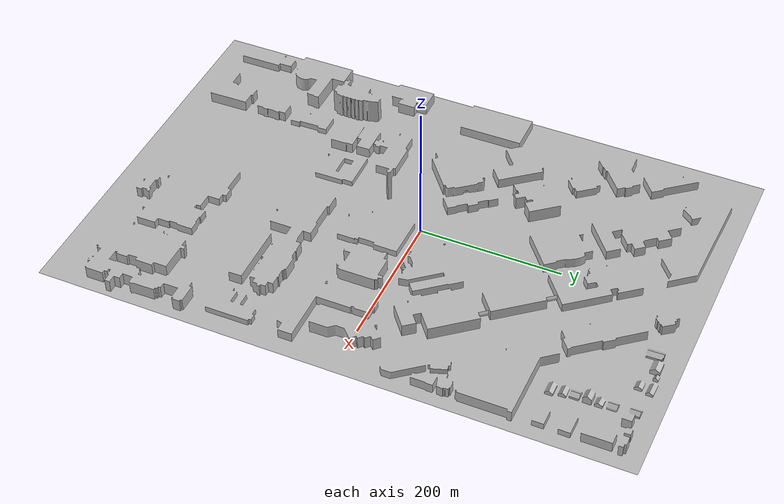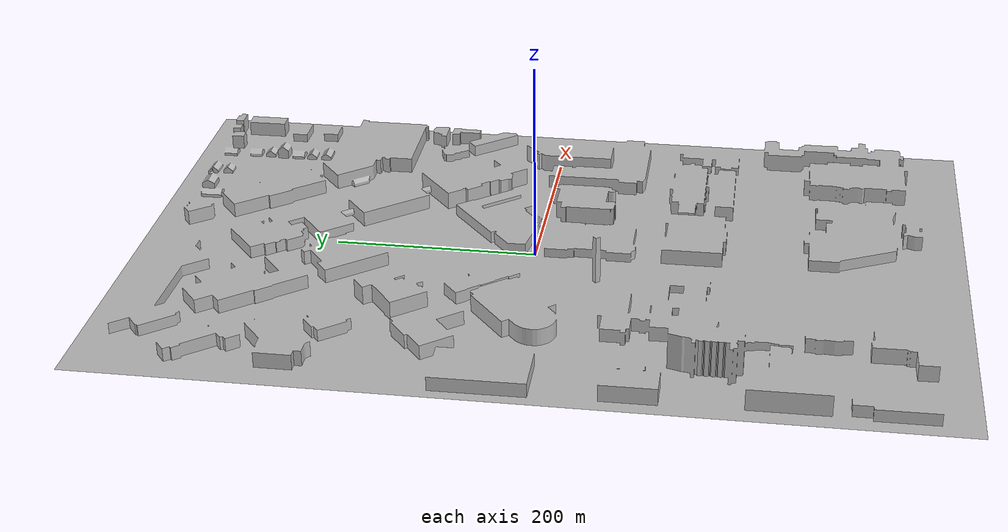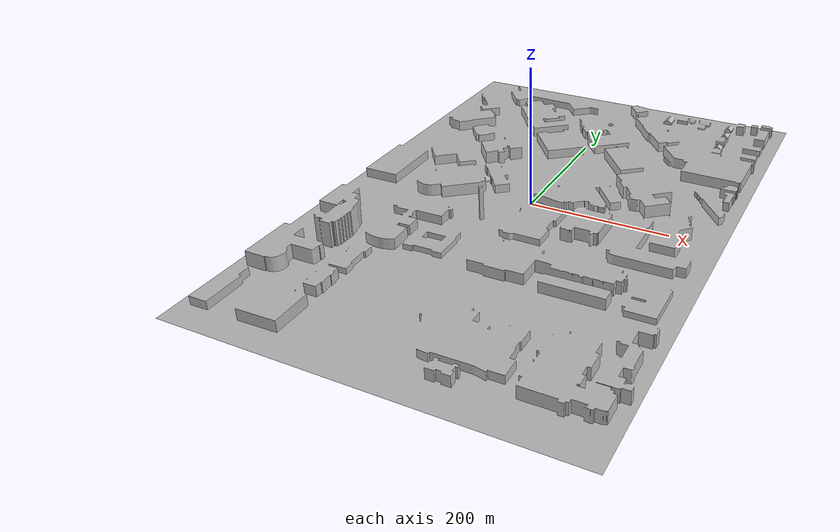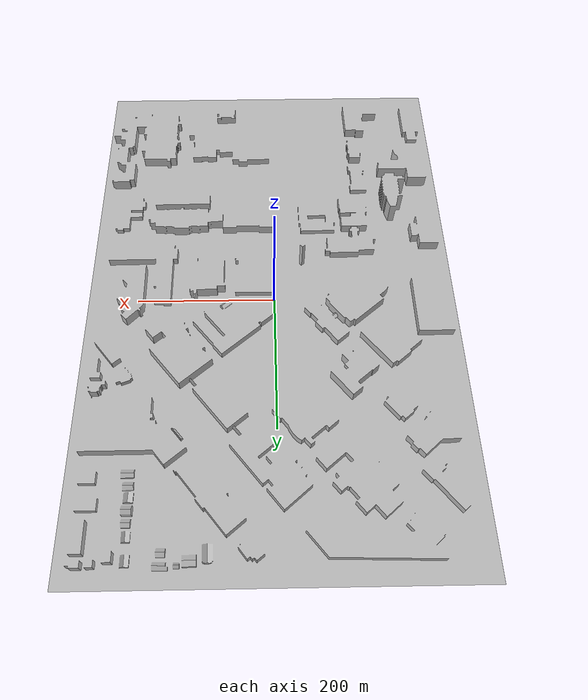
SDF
<sdf version='1.10'>
  <world name='default'>
    <gravity>0 0 -9.8000000000000007</gravity>
    <magnetic_field>5.5644999999999998e-06 2.2875799999999999e-05 -4.2388400000000002e-05</magnetic_field>
    <atmosphere type='adiabatic'/>
    <physics type='ode'>
      <max_step_size>0.001</max_step_size>
      <real_time_factor>1</real_time_factor>
      <real_time_update_rate>1000</real_time_update_rate>
    </physics>
    <scene>
      <ambient>0.400000006 0.400000006 0.400000006 1</ambient>
      <background>0.699999988 0.699999988 0.699999988 1</background>
      <shadows>true</shadows>
    </scene>
    <include>
      <uri>file:///home/zpyang/git/ros2/install/visnet/share/visnet/models/purdue</uri>
      <name>purdue</name>
      <pose>3.3028746463686343 -13.230090331398111 0 0 0 0</pose>
    </include>
  </world>
</sdf>

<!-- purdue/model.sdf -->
<sdf version='1.9'>
  <model name='purdue'>
    <pose>0 0 0 0 0 0</pose>
    <static>true</static>
    <link name="terrain">
      <visual name="visual">
        <geometry>
          <mesh>
            <uri>model://purdue/media/terrain.dae</uri>
          </mesh>
        </geometry>
        <pose>0 0 -.5 0 0 0</pose>
      </visual>
      <collision name="collision">
        <geometry>
          <mesh>
            <uri>model://purdue/media/terrain.dae</uri>
          </mesh>
        </geometry>
        <pose>0 0 -.5 0 0 0</pose>
      </collision>
    </link>

    <link name="buildings">
      <visual name="visual">
        <geometry>
          <mesh>
            <uri>model://purdue/media/buildings.dae</uri>
          </mesh>
        </geometry>
        <pose>0 0 -.5 0 0 0</pose>
      </visual>
      <collision name="collision">
        <geometry>
          <mesh>
            <uri>model://purdue/media/buildings.dae</uri>
          </mesh>
        </geometry>
        <pose>0 0 -.5 0 0 0</pose>
      </collision>
    </link>

  </model>
</sdf>
